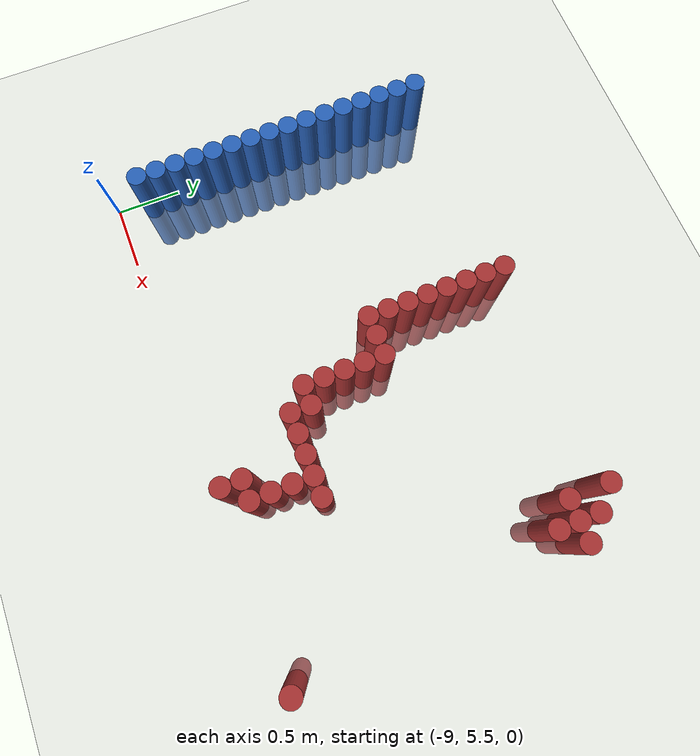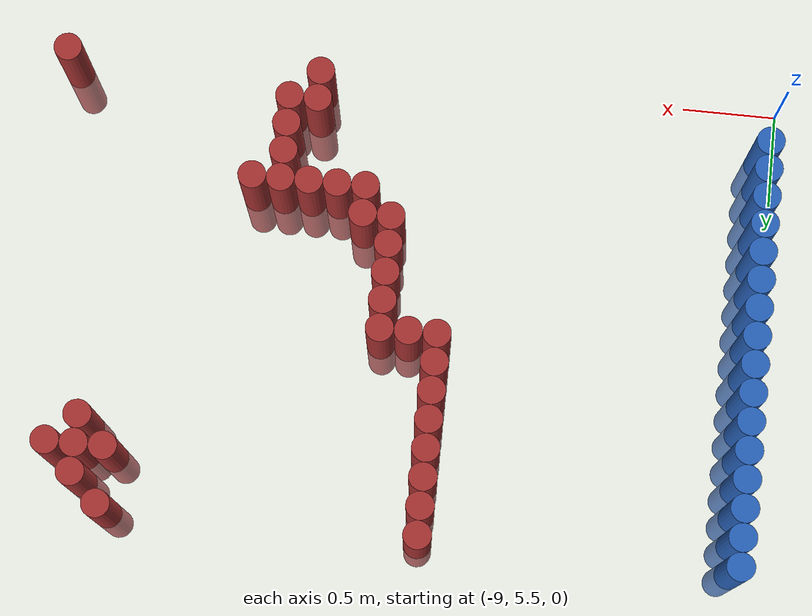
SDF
<sdf version="1.6">
 <world name="default">
  <model name="ground_plane">
   <static>1</static>
   <link name="link">
    <collision name="collision">
     <geometry><plane><normal>0 0 1</normal><size>100 100</size></plane></geometry>
     <surface><friction><ode><mu>100</mu><mu2>50</mu2></ode></friction></surface>
    </collision>
    <visual name="visual">
     <cast_shadows>0</cast_shadows>
     <geometry><plane><normal>0 0 1</normal><size>100 100</size></plane></geometry>
     <material>
      <script><uri>file://media/materials/scripts/gazebo.material</uri><name>Gazebo/Grey</name></script>
     </material>
    </visual>
   </link>
  </model>
  <model name="unit_cylinder_129">
   <static>1</static>
   <pose>-8.925000 5.775000 0.000000 0.000000 0.000000 0.000000</pose>
   <link name="link">
    <inertial>
     <mass>1</mass>
     <inertia><ixx>0.145833</ixx><ixy>0</ixy><ixz>0</ixz><iyy>0.145833</iyy><iyz>0</iyz><izz>0.125</izz></inertia>
    </inertial>
    <collision name="collision">
     <geometry><cylinder><radius>0.075000</radius><length>1</length></cylinder></geometry>
    </collision>
    <visual name="visual">
     <geometry><cylinder><radius>0.075000</radius><length>1</length></cylinder></geometry>
     <material>
      <ambient>0.152000 0.379000 0.720000 1</ambient>
      <diffuse>0.152000 0.379000 0.720000 1</diffuse>
     </material>
     <material>
      <script><name>Gazebo/Grey</name><uri>file://media/materials/scripts/gazebo.material</uri></script>
     </material>
    </visual>
   </link>
  </model>
  <model name="unit_cylinder_130">
   <static>1</static>
   <pose>-8.925000 5.925000 0.000000 0.000000 0.000000 0.000000</pose>
   <link name="link">
    <inertial>
     <mass>1</mass>
     <inertia><ixx>0.145833</ixx><ixy>0</ixy><ixz>0</ixz><iyy>0.145833</iyy><iyz>0</iyz><izz>0.125</izz></inertia>
    </inertial>
    <collision name="collision">
     <geometry><cylinder><radius>0.075000</radius><length>1</length></cylinder></geometry>
    </collision>
    <visual name="visual">
     <geometry><cylinder><radius>0.075000</radius><length>1</length></cylinder></geometry>
     <material>
      <ambient>0.152000 0.379000 0.720000 1</ambient>
      <diffuse>0.152000 0.379000 0.720000 1</diffuse>
     </material>
     <material>
      <script><name>Gazebo/Grey</name><uri>file://media/materials/scripts/gazebo.material</uri></script>
     </material>
    </visual>
   </link>
  </model>
  <model name="unit_cylinder_131">
   <static>1</static>
   <pose>-8.925000 6.075000 0.000000 0.000000 0.000000 0.000000</pose>
   <link name="link">
    <inertial>
     <mass>1</mass>
     <inertia><ixx>0.145833</ixx><ixy>0</ixy><ixz>0</ixz><iyy>0.145833</iyy><iyz>0</iyz><izz>0.125</izz></inertia>
    </inertial>
    <collision name="collision">
     <geometry><cylinder><radius>0.075000</radius><length>1</length></cylinder></geometry>
    </collision>
    <visual name="visual">
     <geometry><cylinder><radius>0.075000</radius><length>1</length></cylinder></geometry>
     <material>
      <ambient>0.152000 0.379000 0.720000 1</ambient>
      <diffuse>0.152000 0.379000 0.720000 1</diffuse>
     </material>
     <material>
      <script><name>Gazebo/Grey</name><uri>file://media/materials/scripts/gazebo.material</uri></script>
     </material>
    </visual>
   </link>
  </model>
  <model name="unit_cylinder_132">
   <static>1</static>
   <pose>-8.925000 6.225000 0.000000 0.000000 0.000000 0.000000</pose>
   <link name="link">
    <inertial>
     <mass>1</mass>
     <inertia><ixx>0.145833</ixx><ixy>0</ixy><ixz>0</ixz><iyy>0.145833</iyy><iyz>0</iyz><izz>0.125</izz></inertia>
    </inertial>
    <collision name="collision">
     <geometry><cylinder><radius>0.075000</radius><length>1</length></cylinder></geometry>
    </collision>
    <visual name="visual">
     <geometry><cylinder><radius>0.075000</radius><length>1</length></cylinder></geometry>
     <material>
      <ambient>0.152000 0.379000 0.720000 1</ambient>
      <diffuse>0.152000 0.379000 0.720000 1</diffuse>
     </material>
     <material>
      <script><name>Gazebo/Grey</name><uri>file://media/materials/scripts/gazebo.material</uri></script>
     </material>
    </visual>
   </link>
  </model>
  <model name="unit_cylinder_133">
   <static>1</static>
   <pose>-8.925000 6.375000 0.000000 0.000000 0.000000 0.000000</pose>
   <link name="link">
    <inertial>
     <mass>1</mass>
     <inertia><ixx>0.145833</ixx><ixy>0</ixy><ixz>0</ixz><iyy>0.145833</iyy><iyz>0</iyz><izz>0.125</izz></inertia>
    </inertial>
    <collision name="collision">
     <geometry><cylinder><radius>0.075000</radius><length>1</length></cylinder></geometry>
    </collision>
    <visual name="visual">
     <geometry><cylinder><radius>0.075000</radius><length>1</length></cylinder></geometry>
     <material>
      <ambient>0.152000 0.379000 0.720000 1</ambient>
      <diffuse>0.152000 0.379000 0.720000 1</diffuse>
     </material>
     <material>
      <script><name>Gazebo/Grey</name><uri>file://media/materials/scripts/gazebo.material</uri></script>
     </material>
    </visual>
   </link>
  </model>
  <model name="unit_cylinder_134">
   <static>1</static>
   <pose>-8.925000 6.525000 0.000000 0.000000 0.000000 0.000000</pose>
   <link name="link">
    <inertial>
     <mass>1</mass>
     <inertia><ixx>0.145833</ixx><ixy>0</ixy><ixz>0</ixz><iyy>0.145833</iyy><iyz>0</iyz><izz>0.125</izz></inertia>
    </inertial>
    <collision name="collision">
     <geometry><cylinder><radius>0.075000</radius><length>1</length></cylinder></geometry>
    </collision>
    <visual name="visual">
     <geometry><cylinder><radius>0.075000</radius><length>1</length></cylinder></geometry>
     <material>
      <ambient>0.152000 0.379000 0.720000 1</ambient>
      <diffuse>0.152000 0.379000 0.720000 1</diffuse>
     </material>
     <material>
      <script><name>Gazebo/Grey</name><uri>file://media/materials/scripts/gazebo.material</uri></script>
     </material>
    </visual>
   </link>
  </model>
  <model name="unit_cylinder_135">
   <static>1</static>
   <pose>-8.925000 6.675000 0.000000 0.000000 0.000000 0.000000</pose>
   <link name="link">
    <inertial>
     <mass>1</mass>
     <inertia><ixx>0.145833</ixx><ixy>0</ixy><ixz>0</ixz><iyy>0.145833</iyy><iyz>0</iyz><izz>0.125</izz></inertia>
    </inertial>
    <collision name="collision">
     <geometry><cylinder><radius>0.075000</radius><length>1</length></cylinder></geometry>
    </collision>
    <visual name="visual">
     <geometry><cylinder><radius>0.075000</radius><length>1</length></cylinder></geometry>
     <material>
      <ambient>0.152000 0.379000 0.720000 1</ambient>
      <diffuse>0.152000 0.379000 0.720000 1</diffuse>
     </material>
     <material>
      <script><name>Gazebo/Grey</name><uri>file://media/materials/scripts/gazebo.material</uri></script>
     </material>
    </visual>
   </link>
  </model>
  <model name="unit_cylinder_136">
   <static>1</static>
   <pose>-8.925000 6.825000 0.000000 0.000000 0.000000 0.000000</pose>
   <link name="link">
    <inertial>
     <mass>1</mass>
     <inertia><ixx>0.145833</ixx><ixy>0</ixy><ixz>0</ixz><iyy>0.145833</iyy><iyz>0</iyz><izz>0.125</izz></inertia>
    </inertial>
    <collision name="collision">
     <geometry><cylinder><radius>0.075000</radius><length>1</length></cylinder></geometry>
    </collision>
    <visual name="visual">
     <geometry><cylinder><radius>0.075000</radius><length>1</length></cylinder></geometry>
     <material>
      <ambient>0.152000 0.379000 0.720000 1</ambient>
      <diffuse>0.152000 0.379000 0.720000 1</diffuse>
     </material>
     <material>
      <script><name>Gazebo/Grey</name><uri>file://media/materials/scripts/gazebo.material</uri></script>
     </material>
    </visual>
   </link>
  </model>
  <model name="unit_cylinder_137">
   <static>1</static>
   <pose>-8.925000 6.975000 0.000000 0.000000 0.000000 0.000000</pose>
   <link name="link">
    <inertial>
     <mass>1</mass>
     <inertia><ixx>0.145833</ixx><ixy>0</ixy><ixz>0</ixz><iyy>0.145833</iyy><iyz>0</iyz><izz>0.125</izz></inertia>
    </inertial>
    <collision name="collision">
     <geometry><cylinder><radius>0.075000</radius><length>1</length></cylinder></geometry>
    </collision>
    <visual name="visual">
     <geometry><cylinder><radius>0.075000</radius><length>1</length></cylinder></geometry>
     <material>
      <ambient>0.152000 0.379000 0.720000 1</ambient>
      <diffuse>0.152000 0.379000 0.720000 1</diffuse>
     </material>
     <material>
      <script><name>Gazebo/Grey</name><uri>file://media/materials/scripts/gazebo.material</uri></script>
     </material>
    </visual>
   </link>
  </model>
  <model name="unit_cylinder_138">
   <static>1</static>
   <pose>-8.925000 7.125000 0.000000 0.000000 0.000000 0.000000</pose>
   <link name="link">
    <inertial>
     <mass>1</mass>
     <inertia><ixx>0.145833</ixx><ixy>0</ixy><ixz>0</ixz><iyy>0.145833</iyy><iyz>0</iyz><izz>0.125</izz></inertia>
    </inertial>
    <collision name="collision">
     <geometry><cylinder><radius>0.075000</radius><length>1</length></cylinder></geometry>
    </collision>
    <visual name="visual">
     <geometry><cylinder><radius>0.075000</radius><length>1</length></cylinder></geometry>
     <material>
      <ambient>0.152000 0.379000 0.720000 1</ambient>
      <diffuse>0.152000 0.379000 0.720000 1</diffuse>
     </material>
     <material>
      <script><name>Gazebo/Grey</name><uri>file://media/materials/scripts/gazebo.material</uri></script>
     </material>
    </visual>
   </link>
  </model>
  <model name="unit_cylinder_139">
   <static>1</static>
   <pose>-8.925000 7.275000 0.000000 0.000000 0.000000 0.000000</pose>
   <link name="link">
    <inertial>
     <mass>1</mass>
     <inertia><ixx>0.145833</ixx><ixy>0</ixy><ixz>0</ixz><iyy>0.145833</iyy><iyz>0</iyz><izz>0.125</izz></inertia>
    </inertial>
    <collision name="collision">
     <geometry><cylinder><radius>0.075000</radius><length>1</length></cylinder></geometry>
    </collision>
    <visual name="visual">
     <geometry><cylinder><radius>0.075000</radius><length>1</length></cylinder></geometry>
     <material>
      <ambient>0.152000 0.379000 0.720000 1</ambient>
      <diffuse>0.152000 0.379000 0.720000 1</diffuse>
     </material>
     <material>
      <script><name>Gazebo/Grey</name><uri>file://media/materials/scripts/gazebo.material</uri></script>
     </material>
    </visual>
   </link>
  </model>
  <model name="unit_cylinder_140">
   <static>1</static>
   <pose>-8.925000 7.425000 0.000000 0.000000 0.000000 0.000000</pose>
   <link name="link">
    <inertial>
     <mass>1</mass>
     <inertia><ixx>0.145833</ixx><ixy>0</ixy><ixz>0</ixz><iyy>0.145833</iyy><iyz>0</iyz><izz>0.125</izz></inertia>
    </inertial>
    <collision name="collision">
     <geometry><cylinder><radius>0.075000</radius><length>1</length></cylinder></geometry>
    </collision>
    <visual name="visual">
     <geometry><cylinder><radius>0.075000</radius><length>1</length></cylinder></geometry>
     <material>
      <ambient>0.152000 0.379000 0.720000 1</ambient>
      <diffuse>0.152000 0.379000 0.720000 1</diffuse>
     </material>
     <material>
      <script><name>Gazebo/Grey</name><uri>file://media/materials/scripts/gazebo.material</uri></script>
     </material>
    </visual>
   </link>
  </model>
  <model name="unit_cylinder_141">
   <static>1</static>
   <pose>-8.925000 7.575000 0.000000 0.000000 0.000000 0.000000</pose>
   <link name="link">
    <inertial>
     <mass>1</mass>
     <inertia><ixx>0.145833</ixx><ixy>0</ixy><ixz>0</ixz><iyy>0.145833</iyy><iyz>0</iyz><izz>0.125</izz></inertia>
    </inertial>
    <collision name="collision">
     <geometry><cylinder><radius>0.075000</radius><length>1</length></cylinder></geometry>
    </collision>
    <visual name="visual">
     <geometry><cylinder><radius>0.075000</radius><length>1</length></cylinder></geometry>
     <material>
      <ambient>0.152000 0.379000 0.720000 1</ambient>
      <diffuse>0.152000 0.379000 0.720000 1</diffuse>
     </material>
     <material>
      <script><name>Gazebo/Grey</name><uri>file://media/materials/scripts/gazebo.material</uri></script>
     </material>
    </visual>
   </link>
  </model>
  <model name="unit_cylinder_142">
   <static>1</static>
   <pose>-8.925000 7.725000 0.000000 0.000000 0.000000 0.000000</pose>
   <link name="link">
    <inertial>
     <mass>1</mass>
     <inertia><ixx>0.145833</ixx><ixy>0</ixy><ixz>0</ixz><iyy>0.145833</iyy><iyz>0</iyz><izz>0.125</izz></inertia>
    </inertial>
    <collision name="collision">
     <geometry><cylinder><radius>0.075000</radius><length>1</length></cylinder></geometry>
    </collision>
    <visual name="visual">
     <geometry><cylinder><radius>0.075000</radius><length>1</length></cylinder></geometry>
     <material>
      <ambient>0.152000 0.379000 0.720000 1</ambient>
      <diffuse>0.152000 0.379000 0.720000 1</diffuse>
     </material>
     <material>
      <script><name>Gazebo/Grey</name><uri>file://media/materials/scripts/gazebo.material</uri></script>
     </material>
    </visual>
   </link>
  </model>
  <model name="unit_cylinder_143">
   <static>1</static>
   <pose>-8.925000 7.875000 0.000000 0.000000 0.000000 0.000000</pose>
   <link name="link">
    <inertial>
     <mass>1</mass>
     <inertia><ixx>0.145833</ixx><ixy>0</ixy><ixz>0</ixz><iyy>0.145833</iyy><iyz>0</iyz><izz>0.125</izz></inertia>
    </inertial>
    <collision name="collision">
     <geometry><cylinder><radius>0.075000</radius><length>1</length></cylinder></geometry>
    </collision>
    <visual name="visual">
     <geometry><cylinder><radius>0.075000</radius><length>1</length></cylinder></geometry>
     <material>
      <ambient>0.152000 0.379000 0.720000 1</ambient>
      <diffuse>0.152000 0.379000 0.720000 1</diffuse>
     </material>
     <material>
      <script><name>Gazebo/Grey</name><uri>file://media/materials/scripts/gazebo.material</uri></script>
     </material>
    </visual>
   </link>
  </model>
  <model name="unit_cylinder_144">
   <static>1</static>
   <pose>-8.925000 8.025000 0.000000 0.000000 0.000000 0.000000</pose>
   <link name="link">
    <inertial>
     <mass>1</mass>
     <inertia><ixx>0.145833</ixx><ixy>0</ixy><ixz>0</ixz><iyy>0.145833</iyy><iyz>0</iyz><izz>0.125</izz></inertia>
    </inertial>
    <collision name="collision">
     <geometry><cylinder><radius>0.075000</radius><length>1</length></cylinder></geometry>
    </collision>
    <visual name="visual">
     <geometry><cylinder><radius>0.075000</radius><length>1</length></cylinder></geometry>
     <material>
      <ambient>0.152000 0.379000 0.720000 1</ambient>
      <diffuse>0.152000 0.379000 0.720000 1</diffuse>
     </material>
     <material>
      <script><name>Gazebo/Grey</name><uri>file://media/materials/scripts/gazebo.material</uri></script>
     </material>
    </visual>
   </link>
  </model>
  <model name="unit_cylinder_176">
   <static>1</static>
   <pose>-7.275000 6.975000 0.000000 0.000000 0.000000 0.000000</pose>
   <link name="link">
    <inertial>
     <mass>1</mass>
     <inertia><ixx>0.145833</ixx><ixy>0</ixy><ixz>0</ixz><iyy>0.145833</iyy><iyz>0</iyz><izz>0.125</izz></inertia>
    </inertial>
    <collision name="collision">
     <geometry><cylinder><radius>0.075000</radius><length>1</length></cylinder></geometry>
    </collision>
    <visual name="visual">
     <geometry><cylinder><radius>0.075000</radius><length>1</length></cylinder></geometry>
     <material>
      <ambient>0.648000 0.192000 0.192000 1</ambient>
      <diffuse>0.648000 0.192000 0.192000 1</diffuse>
     </material>
     <material>
      <script><name>Gazebo/Grey</name><uri>file://media/materials/scripts/gazebo.material</uri></script>
     </material>
    </visual>
   </link>
  </model>
  <model name="unit_cylinder_177">
   <static>1</static>
   <pose>-7.275000 7.125000 0.000000 0.000000 0.000000 0.000000</pose>
   <link name="link">
    <inertial>
     <mass>1</mass>
     <inertia><ixx>0.145833</ixx><ixy>0</ixy><ixz>0</ixz><iyy>0.145833</iyy><iyz>0</iyz><izz>0.125</izz></inertia>
    </inertial>
    <collision name="collision">
     <geometry><cylinder><radius>0.075000</radius><length>1</length></cylinder></geometry>
    </collision>
    <visual name="visual">
     <geometry><cylinder><radius>0.075000</radius><length>1</length></cylinder></geometry>
     <material>
      <ambient>0.648000 0.192000 0.192000 1</ambient>
      <diffuse>0.648000 0.192000 0.192000 1</diffuse>
     </material>
     <material>
      <script><name>Gazebo/Grey</name><uri>file://media/materials/scripts/gazebo.material</uri></script>
     </material>
    </visual>
   </link>
  </model>
  <model name="unit_cylinder_178">
   <static>1</static>
   <pose>-7.275000 7.275000 0.000000 0.000000 0.000000 0.000000</pose>
   <link name="link">
    <inertial>
     <mass>1</mass>
     <inertia><ixx>0.145833</ixx><ixy>0</ixy><ixz>0</ixz><iyy>0.145833</iyy><iyz>0</iyz><izz>0.125</izz></inertia>
    </inertial>
    <collision name="collision">
     <geometry><cylinder><radius>0.075000</radius><length>1</length></cylinder></geometry>
    </collision>
    <visual name="visual">
     <geometry><cylinder><radius>0.075000</radius><length>1</length></cylinder></geometry>
     <material>
      <ambient>0.648000 0.192000 0.192000 1</ambient>
      <diffuse>0.648000 0.192000 0.192000 1</diffuse>
     </material>
     <material>
      <script><name>Gazebo/Grey</name><uri>file://media/materials/scripts/gazebo.material</uri></script>
     </material>
    </visual>
   </link>
  </model>
  <model name="unit_cylinder_179">
   <static>1</static>
   <pose>-7.275000 7.425000 0.000000 0.000000 0.000000 0.000000</pose>
   <link name="link">
    <inertial>
     <mass>1</mass>
     <inertia><ixx>0.145833</ixx><ixy>0</ixy><ixz>0</ixz><iyy>0.145833</iyy><iyz>0</iyz><izz>0.125</izz></inertia>
    </inertial>
    <collision name="collision">
     <geometry><cylinder><radius>0.075000</radius><length>1</length></cylinder></geometry>
    </collision>
    <visual name="visual">
     <geometry><cylinder><radius>0.075000</radius><length>1</length></cylinder></geometry>
     <material>
      <ambient>0.648000 0.192000 0.192000 1</ambient>
      <diffuse>0.648000 0.192000 0.192000 1</diffuse>
     </material>
     <material>
      <script><name>Gazebo/Grey</name><uri>file://media/materials/scripts/gazebo.material</uri></script>
     </material>
    </visual>
   </link>
  </model>
  <model name="unit_cylinder_180">
   <static>1</static>
   <pose>-7.275000 7.575000 0.000000 0.000000 0.000000 0.000000</pose>
   <link name="link">
    <inertial>
     <mass>1</mass>
     <inertia><ixx>0.145833</ixx><ixy>0</ixy><ixz>0</ixz><iyy>0.145833</iyy><iyz>0</iyz><izz>0.125</izz></inertia>
    </inertial>
    <collision name="collision">
     <geometry><cylinder><radius>0.075000</radius><length>1</length></cylinder></geometry>
    </collision>
    <visual name="visual">
     <geometry><cylinder><radius>0.075000</radius><length>1</length></cylinder></geometry>
     <material>
      <ambient>0.648000 0.192000 0.192000 1</ambient>
      <diffuse>0.648000 0.192000 0.192000 1</diffuse>
     </material>
     <material>
      <script><name>Gazebo/Grey</name><uri>file://media/materials/scripts/gazebo.material</uri></script>
     </material>
    </visual>
   </link>
  </model>
  <model name="unit_cylinder_181">
   <static>1</static>
   <pose>-7.275000 7.725000 0.000000 0.000000 0.000000 0.000000</pose>
   <link name="link">
    <inertial>
     <mass>1</mass>
     <inertia><ixx>0.145833</ixx><ixy>0</ixy><ixz>0</ixz><iyy>0.145833</iyy><iyz>0</iyz><izz>0.125</izz></inertia>
    </inertial>
    <collision name="collision">
     <geometry><cylinder><radius>0.075000</radius><length>1</length></cylinder></geometry>
    </collision>
    <visual name="visual">
     <geometry><cylinder><radius>0.075000</radius><length>1</length></cylinder></geometry>
     <material>
      <ambient>0.648000 0.192000 0.192000 1</ambient>
      <diffuse>0.648000 0.192000 0.192000 1</diffuse>
     </material>
     <material>
      <script><name>Gazebo/Grey</name><uri>file://media/materials/scripts/gazebo.material</uri></script>
     </material>
    </visual>
   </link>
  </model>
  <model name="unit_cylinder_182">
   <static>1</static>
   <pose>-7.275000 7.875000 0.000000 0.000000 0.000000 0.000000</pose>
   <link name="link">
    <inertial>
     <mass>1</mass>
     <inertia><ixx>0.145833</ixx><ixy>0</ixy><ixz>0</ixz><iyy>0.145833</iyy><iyz>0</iyz><izz>0.125</izz></inertia>
    </inertial>
    <collision name="collision">
     <geometry><cylinder><radius>0.075000</radius><length>1</length></cylinder></geometry>
    </collision>
    <visual name="visual">
     <geometry><cylinder><radius>0.075000</radius><length>1</length></cylinder></geometry>
     <material>
      <ambient>0.648000 0.192000 0.192000 1</ambient>
      <diffuse>0.648000 0.192000 0.192000 1</diffuse>
     </material>
     <material>
      <script><name>Gazebo/Grey</name><uri>file://media/materials/scripts/gazebo.material</uri></script>
     </material>
    </visual>
   </link>
  </model>
  <model name="unit_cylinder_183">
   <static>1</static>
   <pose>-7.275000 8.025000 0.000000 0.000000 0.000000 0.000000</pose>
   <link name="link">
    <inertial>
     <mass>1</mass>
     <inertia><ixx>0.145833</ixx><ixy>0</ixy><ixz>0</ixz><iyy>0.145833</iyy><iyz>0</iyz><izz>0.125</izz></inertia>
    </inertial>
    <collision name="collision">
     <geometry><cylinder><radius>0.075000</radius><length>1</length></cylinder></geometry>
    </collision>
    <visual name="visual">
     <geometry><cylinder><radius>0.075000</radius><length>1</length></cylinder></geometry>
     <material>
      <ambient>0.648000 0.192000 0.192000 1</ambient>
      <diffuse>0.648000 0.192000 0.192000 1</diffuse>
     </material>
     <material>
      <script><name>Gazebo/Grey</name><uri>file://media/materials/scripts/gazebo.material</uri></script>
     </material>
    </visual>
   </link>
  </model>
  <model name="unit_cylinder_195">
   <static>1</static>
   <pose>-7.125000 6.975000 0.000000 0.000000 0.000000 0.000000</pose>
   <link name="link">
    <inertial>
     <mass>1</mass>
     <inertia><ixx>0.145833</ixx><ixy>0</ixy><ixz>0</ixz><iyy>0.145833</iyy><iyz>0</iyz><izz>0.125</izz></inertia>
    </inertial>
    <collision name="collision">
     <geometry><cylinder><radius>0.075000</radius><length>1</length></cylinder></geometry>
    </collision>
    <visual name="visual">
     <geometry><cylinder><radius>0.075000</radius><length>1</length></cylinder></geometry>
     <material>
      <ambient>0.648000 0.192000 0.192000 1</ambient>
      <diffuse>0.648000 0.192000 0.192000 1</diffuse>
     </material>
     <material>
      <script><name>Gazebo/Grey</name><uri>file://media/materials/scripts/gazebo.material</uri></script>
     </material>
    </visual>
   </link>
  </model>
  <model name="unit_cylinder_197">
   <static>1</static>
   <pose>-6.975000 6.375000 0.000000 0.000000 0.000000 0.000000</pose>
   <link name="link">
    <inertial>
     <mass>1</mass>
     <inertia><ixx>0.145833</ixx><ixy>0</ixy><ixz>0</ixz><iyy>0.145833</iyy><iyz>0</iyz><izz>0.125</izz></inertia>
    </inertial>
    <collision name="collision">
     <geometry><cylinder><radius>0.075000</radius><length>1</length></cylinder></geometry>
    </collision>
    <visual name="visual">
     <geometry><cylinder><radius>0.075000</radius><length>1</length></cylinder></geometry>
     <material>
      <ambient>0.648000 0.192000 0.192000 1</ambient>
      <diffuse>0.648000 0.192000 0.192000 1</diffuse>
     </material>
     <material>
      <script><name>Gazebo/Grey</name><uri>file://media/materials/scripts/gazebo.material</uri></script>
     </material>
    </visual>
   </link>
  </model>
  <model name="unit_cylinder_198">
   <static>1</static>
   <pose>-6.975000 6.525000 0.000000 0.000000 0.000000 0.000000</pose>
   <link name="link">
    <inertial>
     <mass>1</mass>
     <inertia><ixx>0.145833</ixx><ixy>0</ixy><ixz>0</ixz><iyy>0.145833</iyy><iyz>0</iyz><izz>0.125</izz></inertia>
    </inertial>
    <collision name="collision">
     <geometry><cylinder><radius>0.075000</radius><length>1</length></cylinder></geometry>
    </collision>
    <visual name="visual">
     <geometry><cylinder><radius>0.075000</radius><length>1</length></cylinder></geometry>
     <material>
      <ambient>0.648000 0.192000 0.192000 1</ambient>
      <diffuse>0.648000 0.192000 0.192000 1</diffuse>
     </material>
     <material>
      <script><name>Gazebo/Grey</name><uri>file://media/materials/scripts/gazebo.material</uri></script>
     </material>
    </visual>
   </link>
  </model>
  <model name="unit_cylinder_199">
   <static>1</static>
   <pose>-6.975000 6.675000 0.000000 0.000000 0.000000 0.000000</pose>
   <link name="link">
    <inertial>
     <mass>1</mass>
     <inertia><ixx>0.145833</ixx><ixy>0</ixy><ixz>0</ixz><iyy>0.145833</iyy><iyz>0</iyz><izz>0.125</izz></inertia>
    </inertial>
    <collision name="collision">
     <geometry><cylinder><radius>0.075000</radius><length>1</length></cylinder></geometry>
    </collision>
    <visual name="visual">
     <geometry><cylinder><radius>0.075000</radius><length>1</length></cylinder></geometry>
     <material>
      <ambient>0.648000 0.192000 0.192000 1</ambient>
      <diffuse>0.648000 0.192000 0.192000 1</diffuse>
     </material>
     <material>
      <script><name>Gazebo/Grey</name><uri>file://media/materials/scripts/gazebo.material</uri></script>
     </material>
    </visual>
   </link>
  </model>
  <model name="unit_cylinder_200">
   <static>1</static>
   <pose>-6.975000 6.825000 0.000000 0.000000 0.000000 0.000000</pose>
   <link name="link">
    <inertial>
     <mass>1</mass>
     <inertia><ixx>0.145833</ixx><ixy>0</ixy><ixz>0</ixz><iyy>0.145833</iyy><iyz>0</iyz><izz>0.125</izz></inertia>
    </inertial>
    <collision name="collision">
     <geometry><cylinder><radius>0.075000</radius><length>1</length></cylinder></geometry>
    </collision>
    <visual name="visual">
     <geometry><cylinder><radius>0.075000</radius><length>1</length></cylinder></geometry>
     <material>
      <ambient>0.648000 0.192000 0.192000 1</ambient>
      <diffuse>0.648000 0.192000 0.192000 1</diffuse>
     </material>
     <material>
      <script><name>Gazebo/Grey</name><uri>file://media/materials/scripts/gazebo.material</uri></script>
     </material>
    </visual>
   </link>
  </model>
  <model name="unit_cylinder_201">
   <static>1</static>
   <pose>-6.975000 6.975000 0.000000 0.000000 0.000000 0.000000</pose>
   <link name="link">
    <inertial>
     <mass>1</mass>
     <inertia><ixx>0.145833</ixx><ixy>0</ixy><ixz>0</ixz><iyy>0.145833</iyy><iyz>0</iyz><izz>0.125</izz></inertia>
    </inertial>
    <collision name="collision">
     <geometry><cylinder><radius>0.075000</radius><length>1</length></cylinder></geometry>
    </collision>
    <visual name="visual">
     <geometry><cylinder><radius>0.075000</radius><length>1</length></cylinder></geometry>
     <material>
      <ambient>0.648000 0.192000 0.192000 1</ambient>
      <diffuse>0.648000 0.192000 0.192000 1</diffuse>
     </material>
     <material>
      <script><name>Gazebo/Grey</name><uri>file://media/materials/scripts/gazebo.material</uri></script>
     </material>
    </visual>
   </link>
  </model>
  <model name="unit_cylinder_203">
   <static>1</static>
   <pose>-6.825000 6.225000 0.000000 0.000000 0.000000 0.000000</pose>
   <link name="link">
    <inertial>
     <mass>1</mass>
     <inertia><ixx>0.145833</ixx><ixy>0</ixy><ixz>0</ixz><iyy>0.145833</iyy><iyz>0</iyz><izz>0.125</izz></inertia>
    </inertial>
    <collision name="collision">
     <geometry><cylinder><radius>0.075000</radius><length>1</length></cylinder></geometry>
    </collision>
    <visual name="visual">
     <geometry><cylinder><radius>0.075000</radius><length>1</length></cylinder></geometry>
     <material>
      <ambient>0.648000 0.192000 0.192000 1</ambient>
      <diffuse>0.648000 0.192000 0.192000 1</diffuse>
     </material>
     <material>
      <script><name>Gazebo/Grey</name><uri>file://media/materials/scripts/gazebo.material</uri></script>
     </material>
    </visual>
   </link>
  </model>
  <model name="unit_cylinder_204">
   <static>1</static>
   <pose>-6.825000 6.375000 0.000000 0.000000 0.000000 0.000000</pose>
   <link name="link">
    <inertial>
     <mass>1</mass>
     <inertia><ixx>0.145833</ixx><ixy>0</ixy><ixz>0</ixz><iyy>0.145833</iyy><iyz>0</iyz><izz>0.125</izz></inertia>
    </inertial>
    <collision name="collision">
     <geometry><cylinder><radius>0.075000</radius><length>1</length></cylinder></geometry>
    </collision>
    <visual name="visual">
     <geometry><cylinder><radius>0.075000</radius><length>1</length></cylinder></geometry>
     <material>
      <ambient>0.648000 0.192000 0.192000 1</ambient>
      <diffuse>0.648000 0.192000 0.192000 1</diffuse>
     </material>
     <material>
      <script><name>Gazebo/Grey</name><uri>file://media/materials/scripts/gazebo.material</uri></script>
     </material>
    </visual>
   </link>
  </model>
  <model name="unit_cylinder_206">
   <static>1</static>
   <pose>-6.675000 6.225000 0.000000 0.000000 0.000000 0.000000</pose>
   <link name="link">
    <inertial>
     <mass>1</mass>
     <inertia><ixx>0.145833</ixx><ixy>0</ixy><ixz>0</ixz><iyy>0.145833</iyy><iyz>0</iyz><izz>0.125</izz></inertia>
    </inertial>
    <collision name="collision">
     <geometry><cylinder><radius>0.075000</radius><length>1</length></cylinder></geometry>
    </collision>
    <visual name="visual">
     <geometry><cylinder><radius>0.075000</radius><length>1</length></cylinder></geometry>
     <material>
      <ambient>0.648000 0.192000 0.192000 1</ambient>
      <diffuse>0.648000 0.192000 0.192000 1</diffuse>
     </material>
     <material>
      <script><name>Gazebo/Grey</name><uri>file://media/materials/scripts/gazebo.material</uri></script>
     </material>
    </visual>
   </link>
  </model>
  <model name="unit_cylinder_210">
   <static>1</static>
   <pose>-6.525000 5.625000 0.000000 0.000000 0.000000 0.000000</pose>
   <link name="link">
    <inertial>
     <mass>1</mass>
     <inertia><ixx>0.145833</ixx><ixy>0</ixy><ixz>0</ixz><iyy>0.145833</iyy><iyz>0</iyz><izz>0.125</izz></inertia>
    </inertial>
    <collision name="collision">
     <geometry><cylinder><radius>0.075000</radius><length>1</length></cylinder></geometry>
    </collision>
    <visual name="visual">
     <geometry><cylinder><radius>0.075000</radius><length>1</length></cylinder></geometry>
     <material>
      <ambient>0.648000 0.192000 0.192000 1</ambient>
      <diffuse>0.648000 0.192000 0.192000 1</diffuse>
     </material>
     <material>
      <script><name>Gazebo/Grey</name><uri>file://media/materials/scripts/gazebo.material</uri></script>
     </material>
    </visual>
   </link>
  </model>
  <model name="unit_cylinder_211">
   <static>1</static>
   <pose>-6.525000 5.775000 0.000000 0.000000 0.000000 0.000000</pose>
   <link name="link">
    <inertial>
     <mass>1</mass>
     <inertia><ixx>0.145833</ixx><ixy>0</ixy><ixz>0</ixz><iyy>0.145833</iyy><iyz>0</iyz><izz>0.125</izz></inertia>
    </inertial>
    <collision name="collision">
     <geometry><cylinder><radius>0.075000</radius><length>1</length></cylinder></geometry>
    </collision>
    <visual name="visual">
     <geometry><cylinder><radius>0.075000</radius><length>1</length></cylinder></geometry>
     <material>
      <ambient>0.648000 0.192000 0.192000 1</ambient>
      <diffuse>0.648000 0.192000 0.192000 1</diffuse>
     </material>
     <material>
      <script><name>Gazebo/Grey</name><uri>file://media/materials/scripts/gazebo.material</uri></script>
     </material>
    </visual>
   </link>
  </model>
  <model name="unit_cylinder_212">
   <static>1</static>
   <pose>-6.525000 6.225000 0.000000 0.000000 0.000000 0.000000</pose>
   <link name="link">
    <inertial>
     <mass>1</mass>
     <inertia><ixx>0.145833</ixx><ixy>0</ixy><ixz>0</ixz><iyy>0.145833</iyy><iyz>0</iyz><izz>0.125</izz></inertia>
    </inertial>
    <collision name="collision">
     <geometry><cylinder><radius>0.075000</radius><length>1</length></cylinder></geometry>
    </collision>
    <visual name="visual">
     <geometry><cylinder><radius>0.075000</radius><length>1</length></cylinder></geometry>
     <material>
      <ambient>0.648000 0.192000 0.192000 1</ambient>
      <diffuse>0.648000 0.192000 0.192000 1</diffuse>
     </material>
     <material>
      <script><name>Gazebo/Grey</name><uri>file://media/materials/scripts/gazebo.material</uri></script>
     </material>
    </visual>
   </link>
  </model>
  <model name="unit_cylinder_214">
   <static>1</static>
   <pose>-6.375000 5.775000 0.000000 0.000000 0.000000 0.000000</pose>
   <link name="link">
    <inertial>
     <mass>1</mass>
     <inertia><ixx>0.145833</ixx><ixy>0</ixy><ixz>0</ixz><iyy>0.145833</iyy><iyz>0</iyz><izz>0.125</izz></inertia>
    </inertial>
    <collision name="collision">
     <geometry><cylinder><radius>0.075000</radius><length>1</length></cylinder></geometry>
    </collision>
    <visual name="visual">
     <geometry><cylinder><radius>0.075000</radius><length>1</length></cylinder></geometry>
     <material>
      <ambient>0.648000 0.192000 0.192000 1</ambient>
      <diffuse>0.648000 0.192000 0.192000 1</diffuse>
     </material>
     <material>
      <script><name>Gazebo/Grey</name><uri>file://media/materials/scripts/gazebo.material</uri></script>
     </material>
    </visual>
   </link>
  </model>
  <model name="unit_cylinder_215">
   <static>1</static>
   <pose>-6.375000 5.925000 0.000000 0.000000 0.000000 0.000000</pose>
   <link name="link">
    <inertial>
     <mass>1</mass>
     <inertia><ixx>0.145833</ixx><ixy>0</ixy><ixz>0</ixz><iyy>0.145833</iyy><iyz>0</iyz><izz>0.125</izz></inertia>
    </inertial>
    <collision name="collision">
     <geometry><cylinder><radius>0.075000</radius><length>1</length></cylinder></geometry>
    </collision>
    <visual name="visual">
     <geometry><cylinder><radius>0.075000</radius><length>1</length></cylinder></geometry>
     <material>
      <ambient>0.648000 0.192000 0.192000 1</ambient>
      <diffuse>0.648000 0.192000 0.192000 1</diffuse>
     </material>
     <material>
      <script><name>Gazebo/Grey</name><uri>file://media/materials/scripts/gazebo.material</uri></script>
     </material>
    </visual>
   </link>
  </model>
  <model name="unit_cylinder_216">
   <static>1</static>
   <pose>-6.375000 6.075000 0.000000 0.000000 0.000000 0.000000</pose>
   <link name="link">
    <inertial>
     <mass>1</mass>
     <inertia><ixx>0.145833</ixx><ixy>0</ixy><ixz>0</ixz><iyy>0.145833</iyy><iyz>0</iyz><izz>0.125</izz></inertia>
    </inertial>
    <collision name="collision">
     <geometry><cylinder><radius>0.075000</radius><length>1</length></cylinder></geometry>
    </collision>
    <visual name="visual">
     <geometry><cylinder><radius>0.075000</radius><length>1</length></cylinder></geometry>
     <material>
      <ambient>0.648000 0.192000 0.192000 1</ambient>
      <diffuse>0.648000 0.192000 0.192000 1</diffuse>
     </material>
     <material>
      <script><name>Gazebo/Grey</name><uri>file://media/materials/scripts/gazebo.material</uri></script>
     </material>
    </visual>
   </link>
  </model>
  <model name="unit_cylinder_217">
   <static>1</static>
   <pose>-6.375000 6.225000 0.000000 0.000000 0.000000 0.000000</pose>
   <link name="link">
    <inertial>
     <mass>1</mass>
     <inertia><ixx>0.145833</ixx><ixy>0</ixy><ixz>0</ixz><iyy>0.145833</iyy><iyz>0</iyz><izz>0.125</izz></inertia>
    </inertial>
    <collision name="collision">
     <geometry><cylinder><radius>0.075000</radius><length>1</length></cylinder></geometry>
    </collision>
    <visual name="visual">
     <geometry><cylinder><radius>0.075000</radius><length>1</length></cylinder></geometry>
     <material>
      <ambient>0.648000 0.192000 0.192000 1</ambient>
      <diffuse>0.648000 0.192000 0.192000 1</diffuse>
     </material>
     <material>
      <script><name>Gazebo/Grey</name><uri>file://media/materials/scripts/gazebo.material</uri></script>
     </material>
    </visual>
   </link>
  </model>
  <model name="unit_cylinder_219">
   <static>1</static>
   <pose>-6.225000 6.225000 0.000000 0.000000 0.000000 0.000000</pose>
   <link name="link">
    <inertial>
     <mass>1</mass>
     <inertia><ixx>0.145833</ixx><ixy>0</ixy><ixz>0</ixz><iyy>0.145833</iyy><iyz>0</iyz><izz>0.125</izz></inertia>
    </inertial>
    <collision name="collision">
     <geometry><cylinder><radius>0.075000</radius><length>1</length></cylinder></geometry>
    </collision>
    <visual name="visual">
     <geometry><cylinder><radius>0.075000</radius><length>1</length></cylinder></geometry>
     <material>
      <ambient>0.648000 0.192000 0.192000 1</ambient>
      <diffuse>0.648000 0.192000 0.192000 1</diffuse>
     </material>
     <material>
      <script><name>Gazebo/Grey</name><uri>file://media/materials/scripts/gazebo.material</uri></script>
     </material>
    </visual>
   </link>
  </model>
  <model name="unit_cylinder_231">
   <static>1</static>
   <pose>-5.625000 7.725000 0.000000 0.000000 0.000000 0.000000</pose>
   <link name="link">
    <inertial>
     <mass>1</mass>
     <inertia><ixx>0.145833</ixx><ixy>0</ixy><ixz>0</ixz><iyy>0.145833</iyy><iyz>0</iyz><izz>0.125</izz></inertia>
    </inertial>
    <collision name="collision">
     <geometry><cylinder><radius>0.075000</radius><length>1</length></cylinder></geometry>
    </collision>
    <visual name="visual">
     <geometry><cylinder><radius>0.075000</radius><length>1</length></cylinder></geometry>
     <material>
      <ambient>0.648000 0.192000 0.192000 1</ambient>
      <diffuse>0.648000 0.192000 0.192000 1</diffuse>
     </material>
     <material>
      <script><name>Gazebo/Grey</name><uri>file://media/materials/scripts/gazebo.material</uri></script>
     </material>
    </visual>
   </link>
  </model>
  <model name="unit_cylinder_232">
   <static>1</static>
   <pose>-5.625000 8.025000 0.000000 0.000000 0.000000 0.000000</pose>
   <link name="link">
    <inertial>
     <mass>1</mass>
     <inertia><ixx>0.145833</ixx><ixy>0</ixy><ixz>0</ixz><iyy>0.145833</iyy><iyz>0</iyz><izz>0.125</izz></inertia>
    </inertial>
    <collision name="collision">
     <geometry><cylinder><radius>0.075000</radius><length>1</length></cylinder></geometry>
    </collision>
    <visual name="visual">
     <geometry><cylinder><radius>0.075000</radius><length>1</length></cylinder></geometry>
     <material>
      <ambient>0.648000 0.192000 0.192000 1</ambient>
      <diffuse>0.648000 0.192000 0.192000 1</diffuse>
     </material>
     <material>
      <script><name>Gazebo/Grey</name><uri>file://media/materials/scripts/gazebo.material</uri></script>
     </material>
    </visual>
   </link>
  </model>
  <model name="unit_cylinder_238">
   <static>1</static>
   <pose>-5.475000 7.575000 0.000000 0.000000 0.000000 0.000000</pose>
   <link name="link">
    <inertial>
     <mass>1</mass>
     <inertia><ixx>0.145833</ixx><ixy>0</ixy><ixz>0</ixz><iyy>0.145833</iyy><iyz>0</iyz><izz>0.125</izz></inertia>
    </inertial>
    <collision name="collision">
     <geometry><cylinder><radius>0.075000</radius><length>1</length></cylinder></geometry>
    </collision>
    <visual name="visual">
     <geometry><cylinder><radius>0.075000</radius><length>1</length></cylinder></geometry>
     <material>
      <ambient>0.648000 0.192000 0.192000 1</ambient>
      <diffuse>0.648000 0.192000 0.192000 1</diffuse>
     </material>
     <material>
      <script><name>Gazebo/Grey</name><uri>file://media/materials/scripts/gazebo.material</uri></script>
     </material>
    </visual>
   </link>
  </model>
  <model name="unit_cylinder_239">
   <static>1</static>
   <pose>-5.475000 7.725000 0.000000 0.000000 0.000000 0.000000</pose>
   <link name="link">
    <inertial>
     <mass>1</mass>
     <inertia><ixx>0.145833</ixx><ixy>0</ixy><ixz>0</ixz><iyy>0.145833</iyy><iyz>0</iyz><izz>0.125</izz></inertia>
    </inertial>
    <collision name="collision">
     <geometry><cylinder><radius>0.075000</radius><length>1</length></cylinder></geometry>
    </collision>
    <visual name="visual">
     <geometry><cylinder><radius>0.075000</radius><length>1</length></cylinder></geometry>
     <material>
      <ambient>0.648000 0.192000 0.192000 1</ambient>
      <diffuse>0.648000 0.192000 0.192000 1</diffuse>
     </material>
     <material>
      <script><name>Gazebo/Grey</name><uri>file://media/materials/scripts/gazebo.material</uri></script>
     </material>
    </visual>
   </link>
  </model>
  <model name="unit_cylinder_240">
   <static>1</static>
   <pose>-5.475000 7.875000 0.000000 0.000000 0.000000 0.000000</pose>
   <link name="link">
    <inertial>
     <mass>1</mass>
     <inertia><ixx>0.145833</ixx><ixy>0</ixy><ixz>0</ixz><iyy>0.145833</iyy><iyz>0</iyz><izz>0.125</izz></inertia>
    </inertial>
    <collision name="collision">
     <geometry><cylinder><radius>0.075000</radius><length>1</length></cylinder></geometry>
    </collision>
    <visual name="visual">
     <geometry><cylinder><radius>0.075000</radius><length>1</length></cylinder></geometry>
     <material>
      <ambient>0.648000 0.192000 0.192000 1</ambient>
      <diffuse>0.648000 0.192000 0.192000 1</diffuse>
     </material>
     <material>
      <script><name>Gazebo/Grey</name><uri>file://media/materials/scripts/gazebo.material</uri></script>
     </material>
    </visual>
   </link>
  </model>
  <model name="unit_cylinder_244">
   <static>1</static>
   <pose>-5.325000 7.725000 0.000000 0.000000 0.000000 0.000000</pose>
   <link name="link">
    <inertial>
     <mass>1</mass>
     <inertia><ixx>0.145833</ixx><ixy>0</ixy><ixz>0</ixz><iyy>0.145833</iyy><iyz>0</iyz><izz>0.125</izz></inertia>
    </inertial>
    <collision name="collision">
     <geometry><cylinder><radius>0.075000</radius><length>1</length></cylinder></geometry>
    </collision>
    <visual name="visual">
     <geometry><cylinder><radius>0.075000</radius><length>1</length></cylinder></geometry>
     <material>
      <ambient>0.648000 0.192000 0.192000 1</ambient>
      <diffuse>0.648000 0.192000 0.192000 1</diffuse>
     </material>
     <material>
      <script><name>Gazebo/Grey</name><uri>file://media/materials/scripts/gazebo.material</uri></script>
     </material>
    </visual>
   </link>
  </model>
  <model name="unit_cylinder_251">
   <static>1</static>
   <pose>-5.175000 5.625000 0.000000 0.000000 0.000000 0.000000</pose>
   <link name="link">
    <inertial>
     <mass>1</mass>
     <inertia><ixx>0.145833</ixx><ixy>0</ixy><ixz>0</ixz><iyy>0.145833</iyy><iyz>0</iyz><izz>0.125</izz></inertia>
    </inertial>
    <collision name="collision">
     <geometry><cylinder><radius>0.075000</radius><length>1</length></cylinder></geometry>
    </collision>
    <visual name="visual">
     <geometry><cylinder><radius>0.075000</radius><length>1</length></cylinder></geometry>
     <material>
      <ambient>0.648000 0.192000 0.192000 1</ambient>
      <diffuse>0.648000 0.192000 0.192000 1</diffuse>
     </material>
     <material>
      <script><name>Gazebo/Grey</name><uri>file://media/materials/scripts/gazebo.material</uri></script>
     </material>
    </visual>
   </link>
  </model>
 </world>
</sdf>
